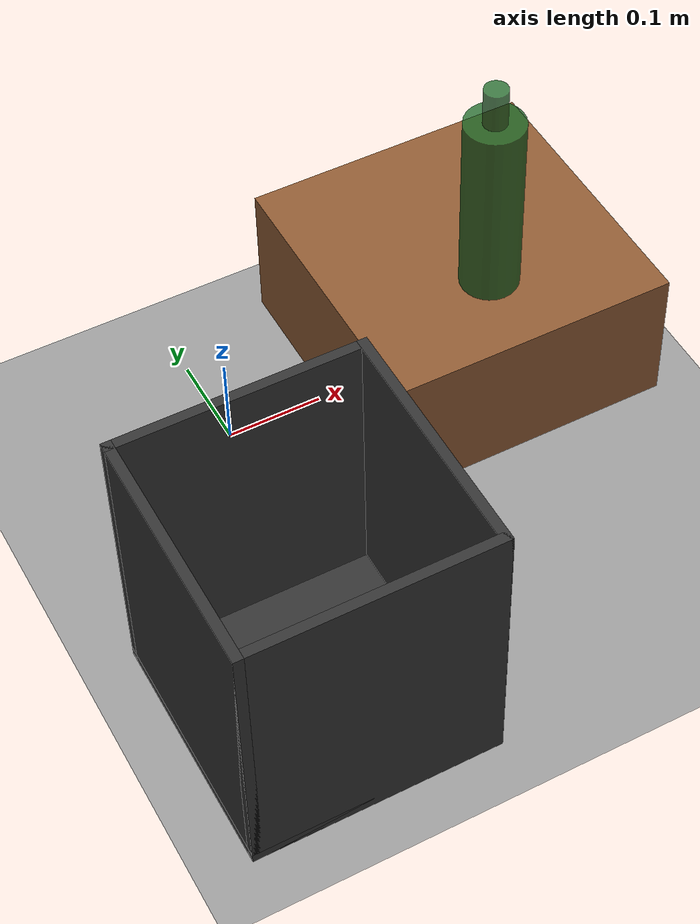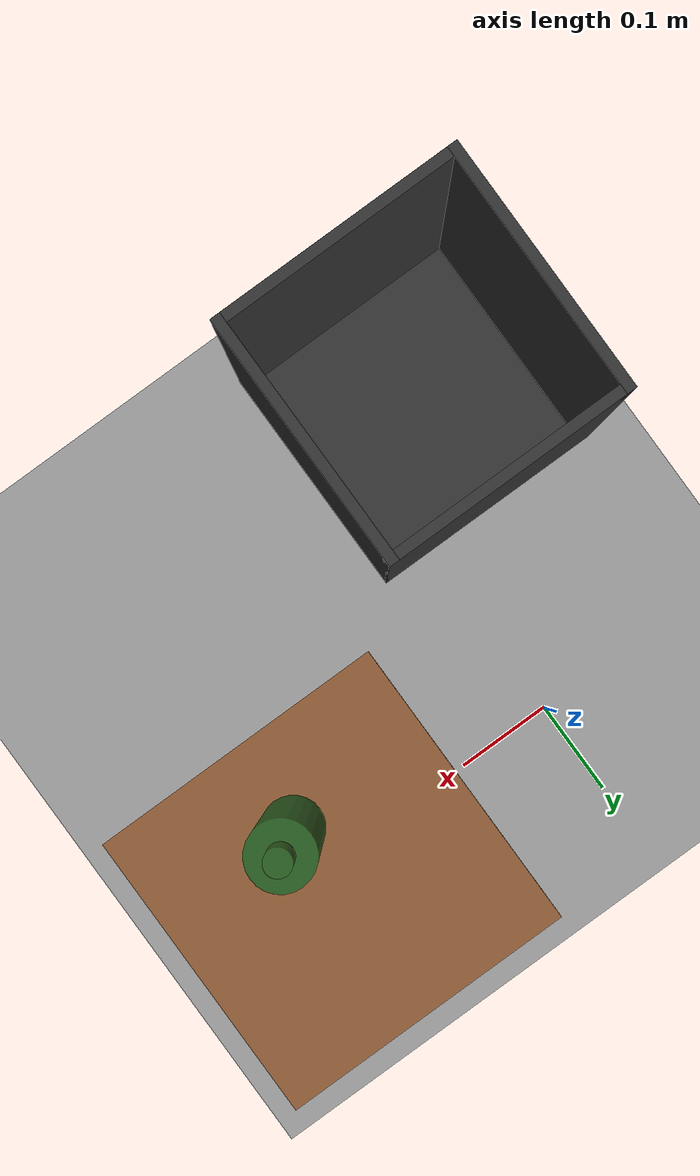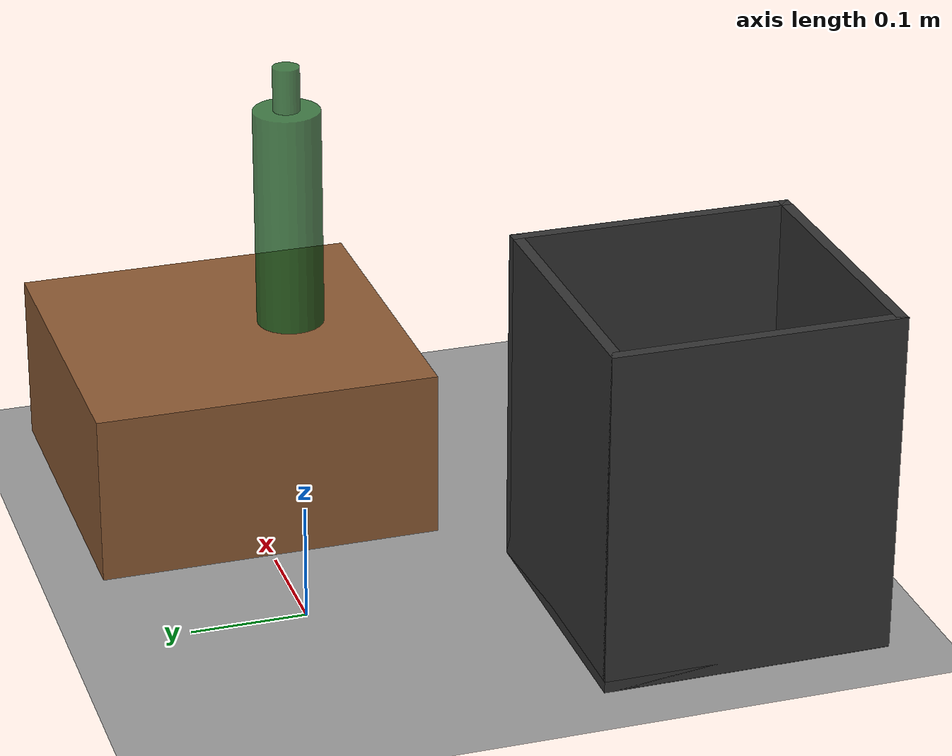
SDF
<?xml version="1.0" ?>
<sdf version="1.6">
  <world name="beverage_disposal_world">

    <scene>
      <ambient>1.0 1.0 1.0</ambient>
      <background>0.8 0.8 0.8</background>
    </scene>

    <light type="directional" name="sun">
      <cast_shadows>true</cast_shadows>
      <pose>0 0 10 0 0 0</pose>
      <diffuse>0.8 0.8 0.8 1</diffuse>
      <specular>0.2 0.2 0.2 1</specular>
      <attenuation>
        <range>1000</range>
        <constant>0.9</constant>
        <linear>0.01</linear>
        <quadratic>0.001</quadratic>
      </attenuation>
      <direction>-0.5 0.1 -0.9</direction>
    </light>

    <model name="ground_plane">
      <static>true</static>
      <link name="link">
        <collision name="collision">
          <geometry>
            <plane>
              <normal>0 0 1</normal>
              <size>100 100</size>
            </plane>
          </geometry>
        </collision>
        <visual name="visual">
          <geometry>
            <plane>
              <normal>0 0 1</normal>
              <size>100 100</size>
            </plane>
          </geometry>
          <material>
            <ambient>0.6 0.6 0.6 1</ambient>
            <diffuse>0.6 0.6 0.6 1</diffuse>
          </material>
        </visual>
      </link>
    </model>

    <model name="table">
      <static>true</static>
      <pose>0.26 0 0.075 0 0 0</pose>
      <link name="table_link">
        <collision name="table_collision">
          <geometry>
            <box>
              <size>0.3 0.3 0.15</size>
            </box>
          </geometry>
        </collision>
        <visual name="table_visual">
          <geometry>
            <box>
              <size>0.3 0.3 0.15</size>
            </box>
          </geometry>
          <material>
            <ambient>0.55 0.35 0.2 1</ambient>
            <diffuse>0.55 0.35 0.2 1</diffuse>
          </material>
        </visual>
      </link>
    </model>

    <!-- Bin: open-top box made of 5 walls, sitting on the ground -->
    <model name="bin">
      <static>true</static>
      <pose>-0.07 -0.32 0 0 0 0</pose>
      <link name="bin_link">
        <collision name="bin_floor_collision">
          <pose>0 0 0.005 0 0 0</pose>
          <geometry>
            <box><size>0.25 0.25 0.01</size></box>
          </geometry>
        </collision>
        <visual name="bin_floor_visual">
          <pose>0 0 0.005 0 0 0</pose>
          <geometry>
            <box><size>0.25 0.25 0.01</size></box>
          </geometry>
          <material>
            <ambient>0.2 0.2 0.2 1</ambient>
            <diffuse>0.2 0.2 0.2 1</diffuse>
          </material>
        </visual>

        <collision name="bin_wall_neg_x_collision">
          <pose>-0.12 0 0.15 0 0 0</pose>
          <geometry><box><size>0.01 0.25 0.3</size></box></geometry>
        </collision>
        <visual name="bin_wall_neg_x_visual">
          <pose>-0.12 0 0.15 0 0 0</pose>
          <geometry><box><size>0.01 0.25 0.3</size></box></geometry>
          <material><ambient>0.2 0.2 0.2 1</ambient><diffuse>0.2 0.2 0.2 1</diffuse></material>
        </visual>

        <collision name="bin_wall_pos_x_collision">
          <pose>0.12 0 0.15 0 0 0</pose>
          <geometry><box><size>0.01 0.25 0.3</size></box></geometry>
        </collision>
        <visual name="bin_wall_pos_x_visual">
          <pose>0.12 0 0.15 0 0 0</pose>
          <geometry><box><size>0.01 0.25 0.3</size></box></geometry>
          <material><ambient>0.2 0.2 0.2 1</ambient><diffuse>0.2 0.2 0.2 1</diffuse></material>
        </visual>

        <collision name="bin_wall_neg_y_collision">
          <pose>0 -0.12 0.15 0 0 0</pose>
          <geometry><box><size>0.25 0.01 0.3</size></box></geometry>
        </collision>
        <visual name="bin_wall_neg_y_visual">
          <pose>0 -0.12 0.15 0 0 0</pose>
          <geometry><box><size>0.25 0.01 0.3</size></box></geometry>
          <material><ambient>0.2 0.2 0.2 1</ambient><diffuse>0.2 0.2 0.2 1</diffuse></material>
        </visual>

        <collision name="bin_wall_pos_y_collision">
          <pose>0 0.12 0.15 0 0 0</pose>
          <geometry><box><size>0.25 0.01 0.3</size></box></geometry>
        </collision>
        <visual name="bin_wall_pos_y_visual">
          <pose>0 0.12 0.15 0 0 0</pose>
          <geometry><box><size>0.25 0.01 0.3</size></box></geometry>
          <material><ambient>0.2 0.2 0.2 1</ambient><diffuse>0.2 0.2 0.2 1</diffuse></material>
        </visual>
      </link>
    </model>

    <!-- Bottle: taller, narrower cylinder with a small neck, also on the table -->
    <model name="bottle">
      <pose>0.26 -0.06 0.25 0 0 0</pose>
      <link name="bottle_link">
        <inertial>
          <mass>0.03</mass>
          <inertia>
            <ixx>7.0e-05</ixx><ixy>0</ixy><ixz>0</ixz>
            <iyy>7.0e-05</iyy><iyz>0</iyz>
            <izz>1.4e-05</izz>
          </inertia>
        </inertial>
        <collision name="bottle_body_collision">
          <geometry>
            <cylinder><radius>0.03</radius><length>0.2</length></cylinder>
          </geometry>
        </collision>
        <visual name="bottle_body_visual">
          <geometry>
            <cylinder><radius>0.03</radius><length>0.2</length></cylinder>
          </geometry>
          <material>
            <ambient>0.1 0.4 0.15 0.8</ambient>
            <diffuse>0.1 0.4 0.15 0.8</diffuse>
          </material>
        </visual>
        <collision name="bottle_neck_collision">
          <pose>0 0 0.12 0 0 0</pose>
          <geometry>
            <cylinder><radius>0.012</radius><length>0.04</length></cylinder>
          </geometry>
        </collision>
        <visual name="bottle_neck_visual">
          <pose>0 0 0.12 0 0 0</pose>
          <geometry>
            <cylinder><radius>0.012</radius><length>0.04</length></cylinder>
          </geometry>
          <material>
            <ambient>0.1 0.4 0.15 0.8</ambient>
            <diffuse>0.1 0.4 0.15 0.8</diffuse>
          </material>
        </visual>
      </link>
    </model>
  </world>
</sdf>
